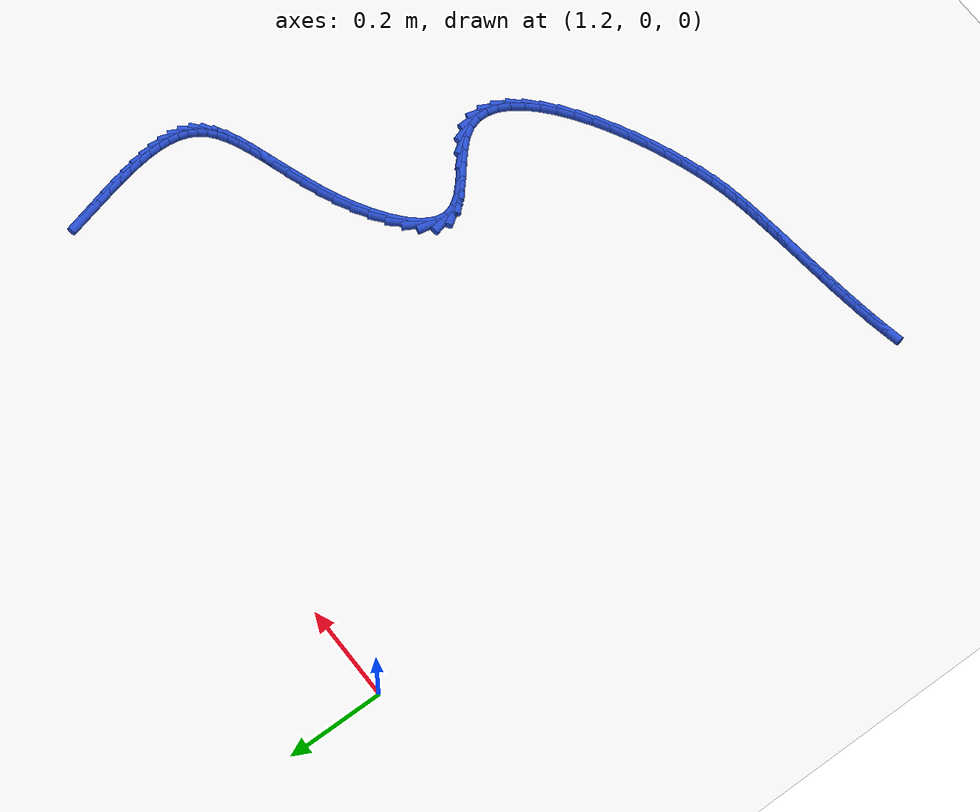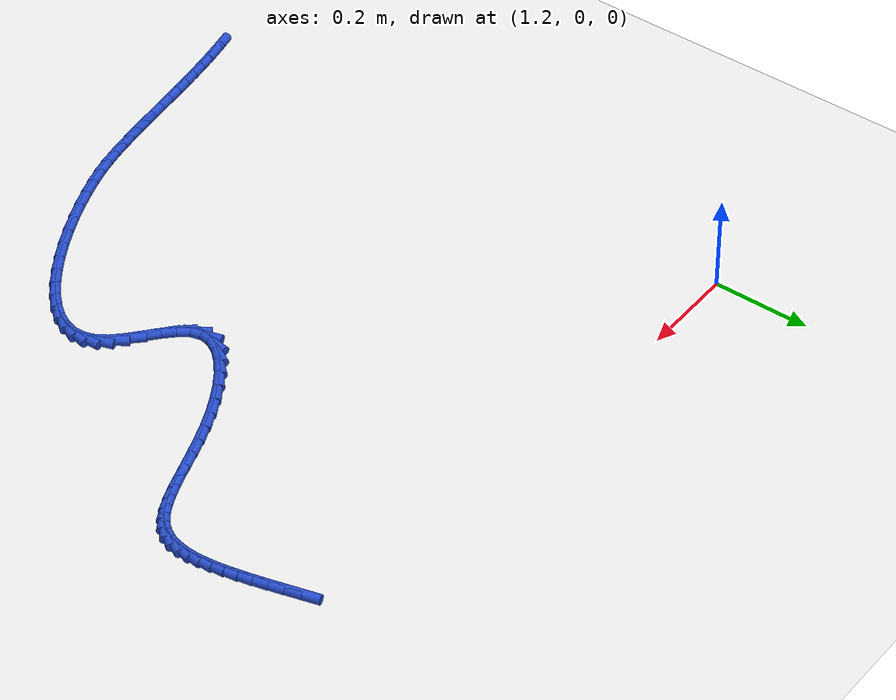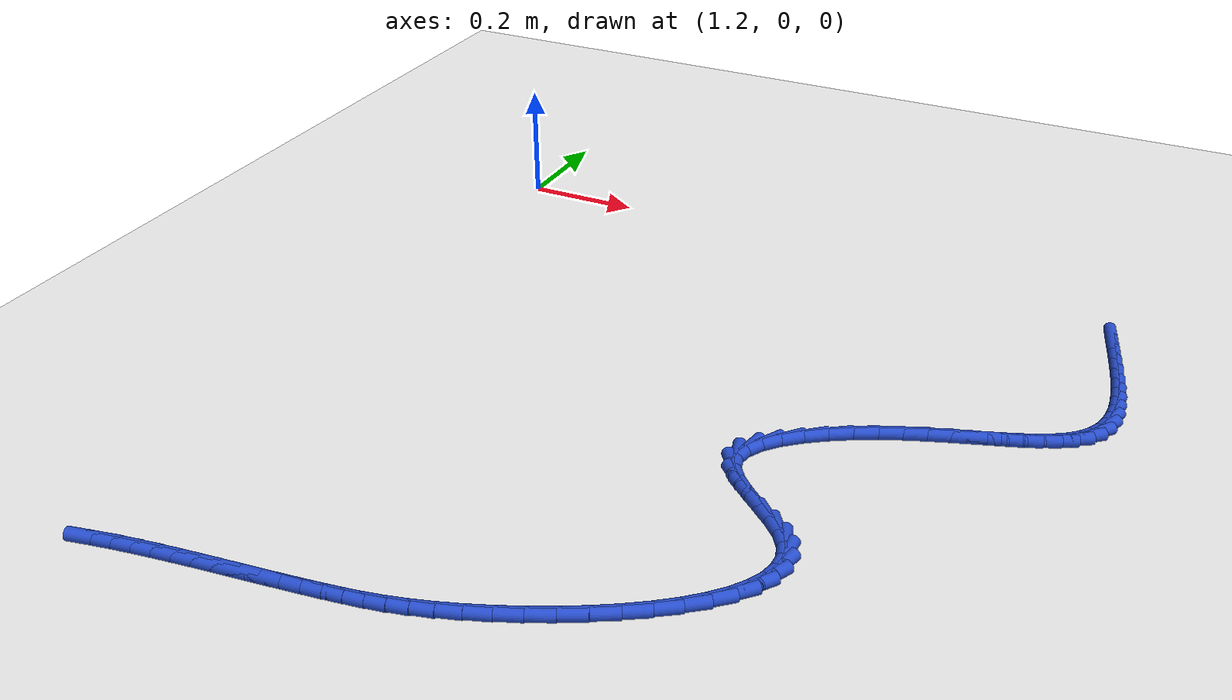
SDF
<sdf version="1.6">
 <world name="default">
  <model name="ground_plane">
   <static>1</static>
   <link name="link">
    <collision name="collision">
     <geometry><plane><normal>0 0 1</normal><size>100 100</size></plane></geometry>
     <surface><friction><ode><mu>100</mu><mu2>50</mu2></ode></friction></surface>
    </collision>
    <visual name="visual">
     <cast_shadows>0</cast_shadows>
     <geometry><plane><normal>0 0 1</normal><size>100 100</size></plane></geometry>
     <material>
      <script><uri>file://media/materials/scripts/gazebo.material</uri><name>Gazebo/WhiteGlow</name></script>
     </material>
    </visual>
   </link>
  </model>
  <model name="line">
   <link name="link_131">
    <pose>2.3257536543400614 -0.12011860961984197 0.01 0 1.57 -1.311588245143034</pose>
    <collision name="collision">
     <geometry><cylinder><radius>0.01</radius><length>0.08</length></cylinder></geometry>
    </collision>
    <visual name="visual">
     <material>
      <script><name>Gazebo/Blue</name><uri>file://media/materials/scripts/gazebo.material</uri></script>
     </material>
     <geometry><cylinder><radius>0.01</radius><length>0.08</length></cylinder></geometry>
    </visual>
   </link>
   <link name="link_132">
    <pose>2.3344841700034458 -0.15304236373338811 0.01 0 1.57 -1.316098148000394</pose>
    <collision name="collision">
     <geometry><cylinder><radius>0.01</radius><length>0.08</length></cylinder></geometry>
    </collision>
    <visual name="visual">
     <material>
      <script><name>Gazebo/Blue</name><uri>file://media/materials/scripts/gazebo.material</uri></script>
     </material>
     <geometry><cylinder><radius>0.01</radius><length>0.08</length></cylinder></geometry>
    </visual>
   </link>
   <link name="link_133">
    <pose>2.342740085984632 -0.1847528986397477 0.01 0 1.57 -1.3295890131719106</pose>
    <collision name="collision">
     <geometry><cylinder><radius>0.01</radius><length>0.08</length></cylinder></geometry>
    </collision>
    <visual name="visual">
     <material>
      <script><name>Gazebo/Blue</name><uri>file://media/materials/scripts/gazebo.material</uri></script>
     </material>
     <geometry><cylinder><radius>0.01</radius><length>0.08</length></cylinder></geometry>
    </visual>
   </link>
   <link name="link_134">
    <pose>2.350223879518706 -0.21517523209545308 0.01 0 1.57 -1.3535523825309144</pose>
    <collision name="collision">
     <geometry><cylinder><radius>0.01</radius><length>0.08</length></cylinder></geometry>
    </collision>
    <visual name="visual">
     <material>
      <script><name>Gazebo/Blue</name><uri>file://media/materials/scripts/gazebo.material</uri></script>
     </material>
     <geometry><cylinder><radius>0.01</radius><length>0.08</length></cylinder></geometry>
    </visual>
   </link>
   <link name="link_135">
    <pose>2.356638027840752 -0.2442343818570379 0.01 0 1.57 -1.3900674068602574</pose>
    <collision name="collision">
     <geometry><cylinder><radius>0.01</radius><length>0.08</length></cylinder></geometry>
    </collision>
    <visual name="visual">
     <material>
      <script><name>Gazebo/Blue</name><uri>file://media/materials/scripts/gazebo.material</uri></script>
     </material>
     <geometry><cylinder><radius>0.01</radius><length>0.08</length></cylinder></geometry>
    </visual>
   </link>
   <link name="link_136">
    <pose>2.361685008185856 -0.2718553656810346 0.01 0 1.57 -1.4419631351534457</pose>
    <collision name="collision">
     <geometry><cylinder><radius>0.01</radius><length>0.08</length></cylinder></geometry>
    </collision>
    <visual name="visual">
     <material>
      <script><name>Gazebo/Blue</name><uri>file://media/materials/scripts/gazebo.material</uri></script>
     </material>
     <geometry><cylinder><radius>0.01</radius><length>0.08</length></cylinder></geometry>
    </visual>
   </link>
   <link name="link_137">
    <pose>2.3650672977891 -0.29796320132397447 0.01 0 1.57 -1.5129452426156105</pose>
    <collision name="collision">
     <geometry><cylinder><radius>0.01</radius><length>0.08</length></cylinder></geometry>
    </collision>
    <visual name="visual">
     <material>
      <script><name>Gazebo/Blue</name><uri>file://media/materials/scripts/gazebo.material</uri></script>
     </material>
     <geometry><cylinder><radius>0.01</radius><length>0.08</length></cylinder></geometry>
    </visual>
   </link>
   <link name="link_138">
    <pose>2.366487373885569 -0.32248290654239203 0.01 0 1.57 1.5340768218205854</pose>
    <collision name="collision">
     <geometry><cylinder><radius>0.01</radius><length>0.08</length></cylinder></geometry>
    </collision>
    <visual name="visual">
     <material>
      <script><name>Gazebo/Blue</name><uri>file://media/materials/scripts/gazebo.material</uri></script>
     </material>
     <geometry><cylinder><radius>0.01</radius><length>0.08</length></cylinder></geometry>
    </visual>
   </link>
   <link name="link_139">
    <pose>2.36564771371035 -0.34533949909281836 0.01 0 1.57 1.411311982272219</pose>
    <collision name="collision">
     <geometry><cylinder><radius>0.01</radius><length>0.08</length></cylinder></geometry>
    </collision>
    <visual name="visual">
     <material>
      <script><name>Gazebo/Blue</name><uri>file://media/materials/scripts/gazebo.material</uri></script>
     </material>
     <geometry><cylinder><radius>0.01</radius><length>0.08</length></cylinder></geometry>
    </visual>
   </link>
   <link name="link_140">
    <pose>2.3622507944985243 -0.3664579967317868 0.01 0 1.57 1.2576217647046817</pose>
    <collision name="collision">
     <geometry><cylinder><radius>0.01</radius><length>0.08</length></cylinder></geometry>
    </collision>
    <visual name="visual">
     <material>
      <script><name>Gazebo/Blue</name><uri>file://media/materials/scripts/gazebo.material</uri></script>
     </material>
     <geometry><cylinder><radius>0.01</radius><length>0.08</length></cylinder></geometry>
    </visual>
   </link>
   <link name="link_141">
    <pose>2.3559990934851784 -0.38576341721583063 0.01 0 1.57 1.0757239379458894</pose>
    <collision name="collision">
     <geometry><cylinder><radius>0.01</radius><length>0.08</length></cylinder></geometry>
    </collision>
    <visual name="visual">
     <material>
      <script><name>Gazebo/Blue</name><uri>file://media/materials/scripts/gazebo.material</uri></script>
     </material>
     <geometry><cylinder><radius>0.01</radius><length>0.08</length></cylinder></geometry>
    </visual>
   </link>
   <link name="link_142">
    <pose>2.3465950879053965 -0.40318077830148114 0.01 0 1.57 0.8770457092250655</pose>
    <collision name="collision">
     <geometry><cylinder><radius>0.01</radius><length>0.08</length></cylinder></geometry>
    </collision>
    <visual name="visual">
     <material>
      <script><name>Gazebo/Blue</name><uri>file://media/materials/scripts/gazebo.material</uri></script>
     </material>
     <geometry><cylinder><radius>0.01</radius><length>0.08</length></cylinder></geometry>
    </visual>
   </link>
   <link name="link_143">
    <pose>2.3337419234540167 -0.4186355870822363 0.01 0 1.57 0.6898460676434319</pose>
    <collision name="collision">
     <geometry><cylinder><radius>0.01</radius><length>0.08</length></cylinder></geometry>
    </collision>
    <visual name="visual">
     <material>
      <script><name>Gazebo/Blue</name><uri>file://media/materials/scripts/gazebo.material</uri></script>
     </material>
     <geometry><cylinder><radius>0.01</radius><length>0.08</length></cylinder></geometry>
    </visual>
   </link>
   <link name="link_144">
    <pose>2.3173211797384052 -0.43218397079525844 0.01 0 1.57 0.5475089029736202</pose>
    <collision name="collision">
     <geometry><cylinder><radius>0.01</radius><length>0.08</length></cylinder></geometry>
    </collision>
    <visual name="visual">
     <material>
      <script><name>Gazebo/Blue</name><uri>file://media/materials/scripts/gazebo.material</uri></script>
     </material>
     <geometry><cylinder><radius>0.01</radius><length>0.08</length></cylinder></geometry>
    </visual>
   </link>
   <link name="link_145">
    <pose>2.2976322975457992 -0.44418794632936415 0.01 0 1.57 0.44817952975096936</pose>
    <collision name="collision">
     <geometry><cylinder><radius>0.01</radius><length>0.08</length></cylinder></geometry>
    </collision>
    <visual name="visual">
     <material>
      <script><name>Gazebo/Blue</name><uri>file://media/materials/scripts/gazebo.material</uri></script>
     </material>
     <geometry><cylinder><radius>0.01</radius><length>0.08</length></cylinder></geometry>
    </visual>
   </link>
   <link name="link_146">
    <pose>2.275034450535538 -0.45505325721829587 0.01 0 1.57 0.38301777656179736</pose>
    <collision name="collision">
     <geometry><cylinder><radius>0.01</radius><length>0.08</length></cylinder></geometry>
    </collision>
    <visual name="visual">
     <material>
      <script><name>Gazebo/Blue</name><uri>file://media/materials/scripts/gazebo.material</uri></script>
     </material>
     <geometry><cylinder><radius>0.01</radius><length>0.08</length></cylinder></geometry>
    </visual>
   </link>
   <link name="link_147">
    <pose>2.2498868123669618 -0.4651856469957977 0.01 0 1.57 0.34437119328746935</pose>
    <collision name="collision">
     <geometry><cylinder><radius>0.01</radius><length>0.08</length></cylinder></geometry>
    </collision>
    <visual name="visual">
     <material>
      <script><name>Gazebo/Blue</name><uri>file://media/materials/scripts/gazebo.material</uri></script>
     </material>
     <geometry><cylinder><radius>0.01</radius><length>0.08</length></cylinder></geometry>
    </visual>
   </link>
   <link name="link_148">
    <pose>2.222548556699412 -0.47499085919561224 0.01 0 1.57 0.3266957932135859</pose>
    <collision name="collision">
     <geometry><cylinder><radius>0.01</radius><length>0.08</length></cylinder></geometry>
    </collision>
    <visual name="visual">
     <material>
      <script><name>Gazebo/Blue</name><uri>file://media/materials/scripts/gazebo.material</uri></script>
     </material>
     <geometry><cylinder><radius>0.01</radius><length>0.08</length></cylinder></geometry>
    </visual>
   </link>
   <link name="link_149">
    <pose>2.193378857192232 -0.484874637351484 0.01 0 1.57 0.3262697844317221</pose>
    <collision name="collision">
     <geometry><cylinder><radius>0.01</radius><length>0.08</length></cylinder></geometry>
    </collision>
    <visual name="visual">
     <material>
      <script><name>Gazebo/Blue</name><uri>file://media/materials/scripts/gazebo.material</uri></script>
     </material>
     <geometry><cylinder><radius>0.01</radius><length>0.08</length></cylinder></geometry>
    </visual>
   </link>
   <link name="link_150">
    <pose>2.16273688750476 -0.49524272499715527 0.01 0 1.57 0.3407052170017454</pose>
    <collision name="collision">
     <geometry><cylinder><radius>0.01</radius><length>0.08</length></cylinder></geometry>
    </collision>
    <visual name="visual">
     <material>
      <script><name>Gazebo/Blue</name><uri>file://media/materials/scripts/gazebo.material</uri></script>
     </material>
     <geometry><cylinder><radius>0.01</radius><length>0.08</length></cylinder></geometry>
    </visual>
   </link>
   <link name="link_151">
    <pose>2.1309818212963396 -0.50650086566637 0.01 0 1.57 0.36852582472645673</pose>
    <collision name="collision">
     <geometry><cylinder><radius>0.01</radius><length>0.08</length></cylinder></geometry>
    </collision>
    <visual name="visual">
     <material>
      <script><name>Gazebo/Blue</name><uri>file://media/materials/scripts/gazebo.material</uri></script>
     </material>
     <geometry><cylinder><radius>0.01</radius><length>0.08</length></cylinder></geometry>
    </visual>
   </link>
   <link name="link_152">
    <pose>2.0984728322263084 -0.5190548028928719 0.01 0 1.57 0.408835945961984</pose>
    <collision name="collision">
     <geometry><cylinder><radius>0.01</radius><length>0.08</length></cylinder></geometry>
    </collision>
    <visual name="visual">
     <material>
      <script><name>Gazebo/Blue</name><uri>file://media/materials/scripts/gazebo.material</uri></script>
     </material>
     <geometry><cylinder><radius>0.01</radius><length>0.08</length></cylinder></geometry>
    </visual>
   </link>
   <link name="link_153">
    <pose>2.0655690939540112 -0.5333102802104035 0.01 0 1.57 0.4610480486973927</pose>
    <collision name="collision">
     <geometry><cylinder><radius>0.01</radius><length>0.08</length></cylinder></geometry>
    </collision>
    <visual name="visual">
     <material>
      <script><name>Gazebo/Blue</name><uri>file://media/materials/scripts/gazebo.material</uri></script>
     </material>
     <geometry><cylinder><radius>0.01</radius><length>0.08</length></cylinder></geometry>
    </visual>
   </link>
   <link name="link_154">
    <pose>2.0326297801387865 -0.5496730411527093 0.01 0 1.57 0.5242035678604343</pose>
    <collision name="collision">
     <geometry><cylinder><radius>0.01</radius><length>0.08</length></cylinder></geometry>
    </collision>
    <visual name="visual">
     <material>
      <script><name>Gazebo/Blue</name><uri>file://media/materials/scripts/gazebo.material</uri></script>
     </material>
     <geometry><cylinder><radius>0.01</radius><length>0.08</length></cylinder></geometry>
    </visual>
   </link>
   <link name="link_155">
    <pose>2.0002347400546228 -0.5684024584197419 0.01 0 1.57 0.5995841354984228</pose>
    <collision name="collision">
     <geometry><cylinder><radius>0.01</radius><length>0.08</length></cylinder></geometry>
    </collision>
    <visual name="visual">
     <material>
      <script><name>Gazebo/Blue</name><uri>file://media/materials/scripts/gazebo.material</uri></script>
     </material>
     <geometry><cylinder><radius>0.01</radius><length>0.08</length></cylinder></geometry>
    </visual>
   </link>
   <link name="link_156">
    <pose>1.969905131050928 -0.5891335491474101 0.01 0 1.57 0.6975076315205359</pose>
    <collision name="collision">
     <geometry><cylinder><radius>0.01</radius><length>0.08</length></cylinder></geometry>
    </collision>
    <visual name="visual">
     <material>
      <script><name>Gazebo/Blue</name><uri>file://media/materials/scripts/gazebo.material</uri></script>
     </material>
     <geometry><cylinder><radius>0.01</radius><length>0.08</length></cylinder></geometry>
    </visual>
   </link>
   <link name="link_157">
    <pose>1.9434130487339416 -0.6113348868800136 0.01 0 1.57 0.8366382549031328</pose>
    <collision name="collision">
     <geometry><cylinder><radius>0.01</radius><length>0.08</length></cylinder></geometry>
    </collision>
    <visual name="visual">
     <material>
      <script><name>Gazebo/Blue</name><uri>file://media/materials/scripts/gazebo.material</uri></script>
     </material>
     <geometry><cylinder><radius>0.01</radius><length>0.08</length></cylinder></geometry>
    </visual>
   </link>
   <link name="link_158">
    <pose>1.9225305910247914 -0.6344750436264213 0.01 0 1.57 1.050210982754496</pose>
    <collision name="collision">
     <geometry><cylinder><radius>0.01</radius><length>0.08</length></cylinder></geometry>
    </collision>
    <visual name="visual">
     <material>
      <script><name>Gazebo/Blue</name><uri>file://media/materials/scripts/gazebo.material</uri></script>
     </material>
     <geometry><cylinder><radius>0.01</radius><length>0.08</length></cylinder></geometry>
    </visual>
   </link>
   <link name="link_159">
    <pose>1.9090298558446095 -0.6580225913954995 0.01 0 1.57 1.387304654496396</pose>
    <collision name="collision">
     <geometry><cylinder><radius>0.01</radius><length>0.08</length></cylinder></geometry>
    </collision>
    <visual name="visual">
     <material>
      <script><name>Gazebo/Blue</name><uri>file://media/materials/scripts/gazebo.material</uri></script>
     </material>
     <geometry><cylinder><radius>0.01</radius><length>0.08</length></cylinder></geometry>
    </visual>
   </link>
   <link name="link_160">
    <pose>1.9046829411145243 -0.6814461021961163 0.01 0 1.57 -1.298570502978454</pose>
    <collision name="collision">
     <geometry><cylinder><radius>0.01</radius><length>0.08</length></cylinder></geometry>
    </collision>
    <visual name="visual">
     <material>
      <script><name>Gazebo/Blue</name><uri>file://media/materials/scripts/gazebo.material</uri></script>
     </material>
     <geometry><cylinder><radius>0.01</radius><length>0.08</length></cylinder></geometry>
    </visual>
   </link>
   <link name="link_161">
    <pose>1.911047971242119 -0.7042470872106724 0.01 0 1.57 -0.9492359357680821</pose>
    <collision name="collision">
     <geometry><cylinder><radius>0.01</radius><length>0.08</length></cylinder></geometry>
    </collision>
    <visual name="visual">
     <material>
      <script><name>Gazebo/Blue</name><uri>file://media/materials/scripts/gazebo.material</uri></script>
     </material>
     <geometry><cylinder><radius>0.01</radius><length>0.08</length></cylinder></geometry>
    </visual>
   </link>
   <link name="link_162">
    <pose>1.9268851328208172 -0.7263577733567239 0.01 0 1.57 -0.775113883232022</pose>
    <collision name="collision">
     <geometry><cylinder><radius>0.01</radius><length>0.08</length></cylinder></geometry>
    </collision>
    <visual name="visual">
     <material>
      <script><name>Gazebo/Blue</name><uri>file://media/materials/scripts/gazebo.material</uri></script>
     </material>
     <geometry><cylinder><radius>0.01</radius><length>0.08</length></cylinder></geometry>
    </visual>
   </link>
   <link name="link_163">
    <pose>1.9489902055283117 -0.7480127891865568 0.01 0 1.57 -0.7063714191118466</pose>
    <collision name="collision">
     <geometry><cylinder><radius>0.01</radius><length>0.08</length></cylinder></geometry>
    </collision>
    <visual name="visual">
     <material>
      <script><name>Gazebo/Blue</name><uri>file://media/materials/scripts/gazebo.material</uri></script>
     </material>
     <geometry><cylinder><radius>0.01</radius><length>0.08</length></cylinder></geometry>
    </visual>
   </link>
   <link name="link_164">
    <pose>1.9741182668236978 -0.7694530289692659 0.01 0 1.57 -0.7113568160451313</pose>
    <collision name="collision">
     <geometry><cylinder><radius>0.01</radius><length>0.08</length></cylinder></geometry>
    </collision>
    <visual name="visual">
     <material>
      <script><name>Gazebo/Blue</name><uri>file://media/materials/scripts/gazebo.material</uri></script>
     </material>
     <geometry><cylinder><radius>0.01</radius><length>0.08</length></cylinder></geometry>
    </visual>
   </link>
   <link name="link_165">
    <pose>1.9990243941660766 -0.7909193869739497 0.01 0 1.57 -0.7922102343977601</pose>
    <collision name="collision">
     <geometry><cylinder><radius>0.01</radius><length>0.08</length></cylinder></geometry>
    </collision>
    <visual name="visual">
     <material>
      <script><name>Gazebo/Blue</name><uri>file://media/materials/scripts/gazebo.material</uri></script>
     </material>
     <geometry><cylinder><radius>0.01</radius><length>0.08</length></cylinder></geometry>
    </visual>
   </link>
   <link name="link_166">
    <pose>2.0204636650145447 -0.8126527574697036 0.01 0 1.57 -0.9814393831219158</pose>
    <collision name="collision">
     <geometry><cylinder><radius>0.01</radius><length>0.08</length></cylinder></geometry>
    </collision>
    <visual name="visual">
     <material>
      <script><name>Gazebo/Blue</name><uri>file://media/materials/scripts/gazebo.material</uri></script>
     </material>
     <geometry><cylinder><radius>0.01</radius><length>0.08</length></cylinder></geometry>
    </visual>
   </link>
   <link name="link_167">
    <pose>2.0353251827491463 -0.8348797521158244 0.01 0 1.57 -1.2624293551990755</pose>
    <collision name="collision">
     <geometry><cylinder><radius>0.01</radius><length>0.08</length></cylinder></geometry>
    </collision>
    <visual name="visual">
     <material>
      <script><name>Gazebo/Blue</name><uri>file://media/materials/scripts/gazebo.material</uri></script>
     </material>
     <geometry><cylinder><radius>0.01</radius><length>0.08</length></cylinder></geometry>
    </visual>
   </link>
   <link name="link_168">
    <pose>2.042564374953473 -0.8576067826124305 0.01 0 1.57 -1.5623540487525944</pose>
    <collision name="collision">
     <geometry><cylinder><radius>0.01</radius><length>0.08</length></cylinder></geometry>
    </collision>
    <visual name="visual">
     <material>
      <script><name>Gazebo/Blue</name><uri>file://media/materials/scripts/gazebo.material</uri></script>
     </material>
     <geometry><cylinder><radius>0.01</radius><length>0.08</length></cylinder></geometry>
    </visual>
   </link>
   <link name="link_169">
    <pose>2.0427590634570985 -0.8806673685519462 0.01 0 1.57 1.3087640508197023</pose>
    <collision name="collision">
     <geometry><cylinder><radius>0.01</radius><length>0.08</length></cylinder></geometry>
    </collision>
    <visual name="visual">
     <material>
      <script><name>Gazebo/Blue</name><uri>file://media/materials/scripts/gazebo.material</uri></script>
     </material>
     <geometry><cylinder><radius>0.01</radius><length>0.08</length></cylinder></geometry>
    </visual>
   </link>
   <link name="link_170">
    <pose>2.0365306786371966 -0.9038903823371688 0.01 0 1.57 1.0926823827676653</pose>
    <collision name="collision">
     <geometry><cylinder><radius>0.01</radius><length>0.08</length></cylinder></geometry>
    </collision>
    <visual name="visual">
     <material>
      <script><name>Gazebo/Blue</name><uri>file://media/materials/scripts/gazebo.material</uri></script>
     </material>
     <geometry><cylinder><radius>0.01</radius><length>0.08</length></cylinder></geometry>
    </visual>
   </link>
   <link name="link_171">
    <pose>2.0245006508709413 -0.9271046963708964 0.01 0 1.57 0.9291210568701607</pose>
    <collision name="collision">
     <geometry><cylinder><radius>0.01</radius><length>0.08</length></cylinder></geometry>
    </collision>
    <visual name="visual">
     <material>
      <script><name>Gazebo/Blue</name><uri>file://media/materials/scripts/gazebo.material</uri></script>
     </material>
     <geometry><cylinder><radius>0.01</radius><length>0.08</length></cylinder></geometry>
    </visual>
   </link>
   <link name="link_172">
    <pose>2.0072904105355045 -0.9501391830559279 0.01 0 1.57 0.8059679651051656</pose>
    <collision name="collision">
     <geometry><cylinder><radius>0.01</radius><length>0.08</length></cylinder></geometry>
    </collision>
    <visual name="visual">
     <material>
      <script><name>Gazebo/Blue</name><uri>file://media/materials/scripts/gazebo.material</uri></script>
     </material>
     <geometry><cylinder><radius>0.01</radius><length>0.08</length></cylinder></geometry>
    </visual>
   </link>
   <link name="link_173">
    <pose>1.9855213880080618 -0.9728227147950602 0.01 0 1.57 0.7114765691871429</pose>
    <collision name="collision">
     <geometry><cylinder><radius>0.01</radius><length>0.08</length></cylinder></geometry>
    </collision>
    <visual name="visual">
     <material>
      <script><name>Gazebo/Blue</name><uri>file://media/materials/scripts/gazebo.material</uri></script>
     </material>
     <geometry><cylinder><radius>0.01</radius><length>0.08</length></cylinder></geometry>
    </visual>
   </link>
   <link name="link_174">
    <pose>1.959815013665785 -0.9949841639910924 0.01 0 1.57 0.6368864049072572</pose>
    <collision name="collision">
     <geometry><cylinder><radius>0.01</radius><length>0.08</length></cylinder></geometry>
    </collision>
    <visual name="visual">
     <material>
      <script><name>Gazebo/Blue</name><uri>file://media/materials/scripts/gazebo.material</uri></script>
     </material>
     <geometry><cylinder><radius>0.01</radius><length>0.08</length></cylinder></geometry>
    </visual>
   </link>
   <link name="link_175">
    <pose>1.930792717885849 -1.0164524030468212 0.01 0 1.57 0.5761089756766641</pose>
    <collision name="collision">
     <geometry><cylinder><radius>0.01</radius><length>0.08</length></cylinder></geometry>
    </collision>
    <visual name="visual">
     <material>
      <script><name>Gazebo/Blue</name><uri>file://media/materials/scripts/gazebo.material</uri></script>
     </material>
     <geometry><cylinder><radius>0.01</radius><length>0.08</length></cylinder></geometry>
    </visual>
   </link>
   <link name="link_176">
    <pose>1.8990759310454268 -1.0370563043650463 0.01 0 1.57 0.5249263748957266</pose>
    <collision name="collision">
     <geometry><cylinder><radius>0.01</radius><length>0.08</length></cylinder></geometry>
    </collision>
    <visual name="visual">
     <material>
      <script><name>Gazebo/Blue</name><uri>file://media/materials/scripts/gazebo.material</uri></script>
     </material>
     <geometry><cylinder><radius>0.01</radius><length>0.08</length></cylinder></geometry>
    </visual>
   </link>
   <link name="link_177">
    <pose>1.8652860835216925 -1.0566247403485638 0.01 0 1.57 0.4803291796185967</pose>
    <collision name="collision">
     <geometry><cylinder><radius>0.01</radius><length>0.08</length></cylinder></geometry>
    </collision>
    <visual name="visual">
     <material>
      <script><name>Gazebo/Blue</name><uri>file://media/materials/scripts/gazebo.material</uri></script>
     </material>
     <geometry><cylinder><radius>0.01</radius><length>0.08</length></cylinder></geometry>
    </visual>
   </link>
   <link name="link_178">
    <pose>1.8300446056918191 -1.074986583400174 0.01 0 1.57 0.44005171722595693</pose>
    <collision name="collision">
     <geometry><cylinder><radius>0.01</radius><length>0.08</length></cylinder></geometry>
    </collision>
    <visual name="visual">
     <material>
      <script><name>Gazebo/Blue</name><uri>file://media/materials/scripts/gazebo.material</uri></script>
     </material>
     <geometry><cylinder><radius>0.01</radius><length>0.08</length></cylinder></geometry>
    </visual>
   </link>
   <link name="link_179">
    <pose>1.793972927932981 -1.0919707059226726 0.01 0 1.57 0.4022460938367944</pose>
    <collision name="collision">
     <geometry><cylinder><radius>0.01</radius><length>0.08</length></cylinder></geometry>
    </collision>
    <visual name="visual">
     <material>
      <script><name>Gazebo/Blue</name><uri>file://media/materials/scripts/gazebo.material</uri></script>
     </material>
     <geometry><cylinder><radius>0.01</radius><length>0.08</length></cylinder></geometry>
    </visual>
   </link>
   <link name="link_180">
    <pose>1.7576924806223504 -1.1074059803188598 0.01 0 1.57 0.3652293010270471</pose>
    <collision name="collision">
     <geometry><cylinder><radius>0.01</radius><length>0.08</length></cylinder></geometry>
    </collision>
    <visual name="visual">
     <material>
      <script><name>Gazebo/Blue</name><uri>file://media/materials/scripts/gazebo.material</uri></script>
     </material>
     <geometry><cylinder><radius>0.01</radius><length>0.08</length></cylinder></geometry>
    </visual>
   </link>
   <link name="link_181">
    <pose>1.7218246941371025 -1.1211212789915317 0.01 0 1.57 0.3272427770900133</pose>
    <collision name="collision">
     <geometry><cylinder><radius>0.01</radius><length>0.08</length></cylinder></geometry>
    </collision>
    <visual name="visual">
     <material>
      <script><name>Gazebo/Blue</name><uri>file://media/materials/scripts/gazebo.material</uri></script>
     </material>
     <geometry><cylinder><radius>0.01</radius><length>0.08</length></cylinder></geometry>
    </visual>
   </link>
   <link name="link_182">
    <pose>1.68699099885441 -1.1329454743434875 0.01 0 1.57 0.2861534699605358</pose>
    <collision name="collision">
     <geometry><cylinder><radius>0.01</radius><length>0.08</length></cylinder></geometry>
    </collision>
    <visual name="visual">
     <material>
      <script><name>Gazebo/Blue</name><uri>file://media/materials/scripts/gazebo.material</uri></script>
     </material>
     <geometry><cylinder><radius>0.01</radius><length>0.08</length></cylinder></geometry>
    </visual>
   </link>
   <link name="link_183">
    <pose>1.6538128251514457 -1.1427074387775251 0.01 0 1.57 0.2398454594550488</pose>
    <collision name="collision">
     <geometry><cylinder><radius>0.01</radius><length>0.08</length></cylinder></geometry>
    </collision>
    <visual name="visual">
     <material>
      <script><name>Gazebo/Blue</name><uri>file://media/materials/scripts/gazebo.material</uri></script>
     </material>
     <geometry><cylinder><radius>0.01</radius><length>0.08</length></cylinder></geometry>
    </visual>
   </link>
   <link name="link_184">
    <pose>1.6228054835670263 -1.1502903745020872 0.01 0 1.57 0.1945546574136037</pose>
    <collision name="collision">
     <geometry><cylinder><radius>0.01</radius><length>0.08</length></cylinder></geometry>
    </collision>
    <visual name="visual">
     <material>
      <script><name>Gazebo/Blue</name><uri>file://media/materials/scripts/gazebo.material</uri></script>
     </material>
     <geometry><cylinder><radius>0.01</radius><length>0.08</length></cylinder></geometry>
    </visual>
   </link>
   <link name="link_185">
    <pose>1.5935522944903782 -1.1560546314905702 0.01 0 1.57 0.15898376182531757</pose>
    <collision name="collision">
     <geometry><cylinder><radius>0.01</radius><length>0.08</length></cylinder></geometry>
    </collision>
    <visual name="visual">
     <material>
      <script><name>Gazebo/Blue</name><uri>file://media/materials/scripts/gazebo.material</uri></script>
     </material>
     <geometry><cylinder><radius>0.01</radius><length>0.08</length></cylinder></geometry>
    </visual>
   </link>
   <link name="link_186">
    <pose>1.565153138015826 -1.1606080649676906 0.01 0 1.57 0.13778712481299557</pose>
    <collision name="collision">
     <geometry><cylinder><radius>0.01</radius><length>0.08</length></cylinder></geometry>
    </collision>
    <visual name="visual">
     <material>
      <script><name>Gazebo/Blue</name><uri>file://media/materials/scripts/gazebo.material</uri></script>
     </material>
     <geometry><cylinder><radius>0.01</radius><length>0.08</length></cylinder></geometry>
    </visual>
   </link>
   <link name="link_187">
    <pose>1.5367225328312095 -1.16455041684768 0.01 0 1.57 0.1266727178071232</pose>
    <collision name="collision">
     <geometry><cylinder><radius>0.01</radius><length>0.08</length></cylinder></geometry>
    </collision>
    <visual name="visual">
     <material>
      <script><name>Gazebo/Blue</name><uri>file://media/materials/scripts/gazebo.material</uri></script>
     </material>
     <geometry><cylinder><radius>0.01</radius><length>0.08</length></cylinder></geometry>
    </visual>
   </link>
   <link name="link_188">
    <pose>1.5078382477600634 -1.1682289641145447 0.01 0 1.57 0.11895772182568484</pose>
    <collision name="collision">
     <geometry><cylinder><radius>0.01</radius><length>0.08</length></cylinder></geometry>
    </collision>
    <visual name="visual">
     <material>
      <script><name>Gazebo/Blue</name><uri>file://media/materials/scripts/gazebo.material</uri></script>
     </material>
     <geometry><cylinder><radius>0.01</radius><length>0.08</length></cylinder></geometry>
    </visual>
   </link>
   <link name="link_189">
    <pose>1.4785599261987106 -1.1717283687609008 0.01 0 1.57 0.11415683071922236</pose>
    <collision name="collision">
     <geometry><cylinder><radius>0.01</radius><length>0.08</length></cylinder></geometry>
    </collision>
    <visual name="visual">
     <material>
      <script><name>Gazebo/Blue</name><uri>file://media/materials/scripts/gazebo.material</uri></script>
     </material>
     <geometry><cylinder><radius>0.01</radius><length>0.08</length></cylinder></geometry>
    </visual>
   </link>
   <link name="link_190">
    <pose>1.4489696798196092 -1.1751210478789764 0.01 0 1.57 0.11214863923652987</pose>
    <collision name="collision">
     <geometry><cylinder><radius>0.01</radius><length>0.08</length></cylinder></geometry>
    </collision>
    <visual name="visual">
     <material>
      <script><name>Gazebo/Blue</name><uri>file://media/materials/scripts/gazebo.material</uri></script>
     </material>
     <geometry><cylinder><radius>0.01</radius><length>0.08</length></cylinder></geometry>
    </visual>
   </link>
   <link name="link_191">
    <pose>1.419149620295215 -1.178479418561 0.01 0 1.57 0.11285618918127215</pose>
    <collision name="collision">
     <geometry><cylinder><radius>0.01</radius><length>0.08</length></cylinder></geometry>
    </collision>
    <visual name="visual">
     <material>
      <script><name>Gazebo/Blue</name><uri>file://media/materials/scripts/gazebo.material</uri></script>
     </material>
     <geometry><cylinder><radius>0.01</radius><length>0.08</length></cylinder></geometry>
    </visual>
   </link>
   <link name="link_192">
    <pose>1.3891818592979859 -1.1818758978991983 0.01 0 1.57 0.11624392334256498</pose>
    <collision name="collision">
     <geometry><cylinder><radius>0.01</radius><length>0.08</length></cylinder></geometry>
    </collision>
    <visual name="visual">
     <material>
      <script><name>Gazebo/Blue</name><uri>file://media/materials/scripts/gazebo.material</uri></script>
     </material>
     <geometry><cylinder><radius>0.01</radius><length>0.08</length></cylinder></geometry>
    </visual>
   </link>
   <link name="link_193">
    <pose>1.3591485085003785 -1.185382902985801 0.01 0 1.57 0.1223156397791777</pose>
    <collision name="collision">
     <geometry><cylinder><radius>0.01</radius><length>0.08</length></cylinder></geometry>
    </collision>
    <visual name="visual">
     <material>
      <script><name>Gazebo/Blue</name><uri>file://media/materials/scripts/gazebo.material</uri></script>
     </material>
     <geometry><cylinder><radius>0.01</radius><length>0.08</length></cylinder></geometry>
    </visual>
   </link>
   <link name="link_194">
    <pose>1.3291316795748491 -1.189072850913035 0.01 0 1.57 0.13111333471581132</pose>
    <collision name="collision">
     <geometry><cylinder><radius>0.01</radius><length>0.08</length></cylinder></geometry>
    </collision>
    <visual name="visual">
     <material>
      <script><name>Gazebo/Blue</name><uri>file://media/materials/scripts/gazebo.material</uri></script>
     </material>
     <geometry><cylinder><radius>0.01</radius><length>0.08</length></cylinder></geometry>
    </visual>
   </link>
   <link name="link_195">
    <pose>1.299213484193856 -1.193018158773129 0.01 0 1.57 0.14271680558575675</pose>
    <collision name="collision">
     <geometry><cylinder><radius>0.01</radius><length>0.08</length></cylinder></geometry>
    </collision>
    <visual name="visual">
     <material>
      <script><name>Gazebo/Blue</name><uri>file://media/materials/scripts/gazebo.material</uri></script>
     </material>
     <geometry><cylinder><radius>0.01</radius><length>0.08</length></cylinder></geometry>
    </visual>
   </link>
   <link name="link_196">
    <pose>1.2694760340298548 -1.1972912436583107 0.01 0 1.57 0.15724385842754499</pose>
    <collision name="collision">
     <geometry><cylinder><radius>0.01</radius><length>0.08</length></cylinder></geometry>
    </collision>
    <visual name="visual">
     <material>
      <script><name>Gazebo/Blue</name><uri>file://media/materials/scripts/gazebo.material</uri></script>
     </material>
     <geometry><cylinder><radius>0.01</radius><length>0.08</length></cylinder></geometry>
    </visual>
   </link>
   <link name="link_197">
    <pose>1.2400014407553037 -1.201964522660808 0.01 0 1.57 0.17485091441463754</pose>
    <collision name="collision">
     <geometry><cylinder><radius>0.01</radius><length>0.08</length></cylinder></geometry>
    </collision>
    <visual name="visual">
     <material>
      <script><name>Gazebo/Blue</name><uri>file://media/materials/scripts/gazebo.material</uri></script>
     </material>
     <geometry><cylinder><radius>0.01</radius><length>0.08</length></cylinder></geometry>
    </visual>
   </link>
   <link name="link_198">
    <pose>1.2108718160426586 -1.2071104128728496 0.01 0 1.57 0.1957337258661044</pose>
    <collision name="collision">
     <geometry><cylinder><radius>0.01</radius><length>0.08</length></cylinder></geometry>
    </collision>
    <visual name="visual">
     <material>
      <script><name>Gazebo/Blue</name><uri>file://media/materials/scripts/gazebo.material</uri></script>
     </material>
     <geometry><cylinder><radius>0.01</radius><length>0.08</length></cylinder></geometry>
    </visual>
   </link>
  </model>
 </world>
</sdf>
